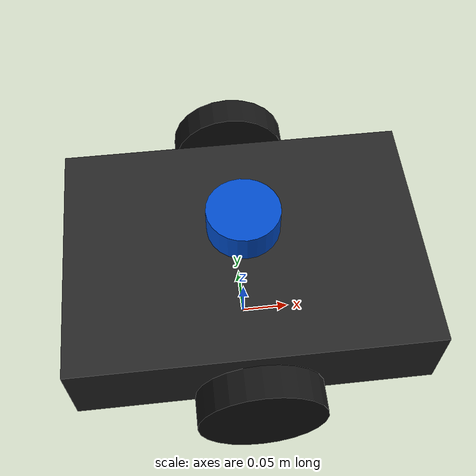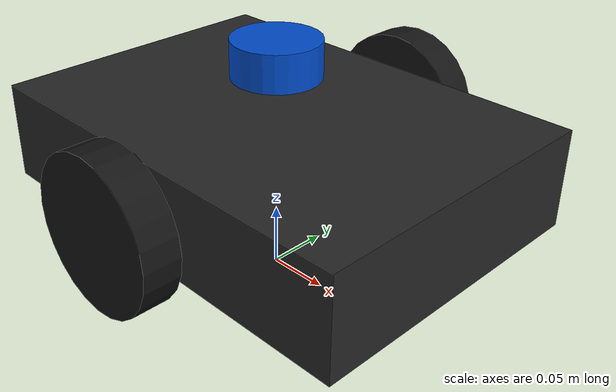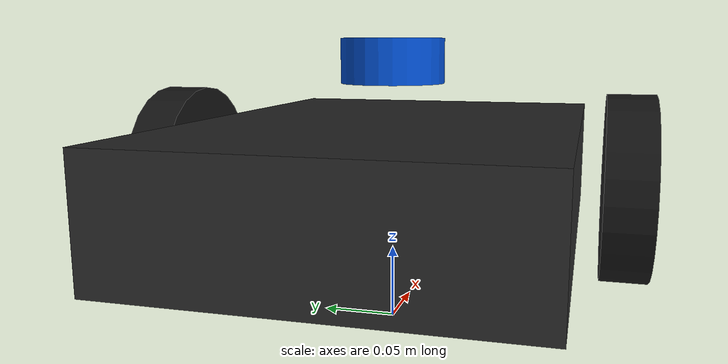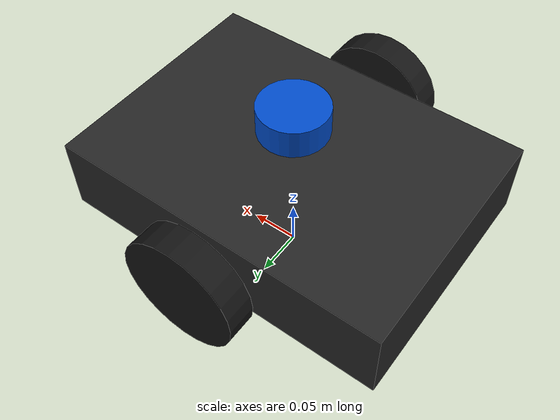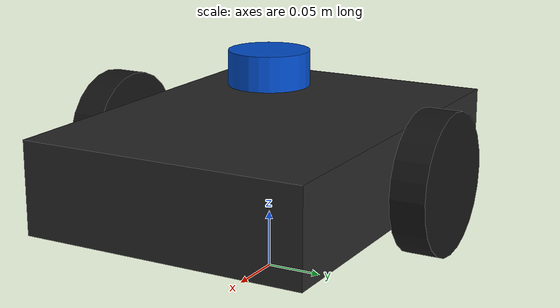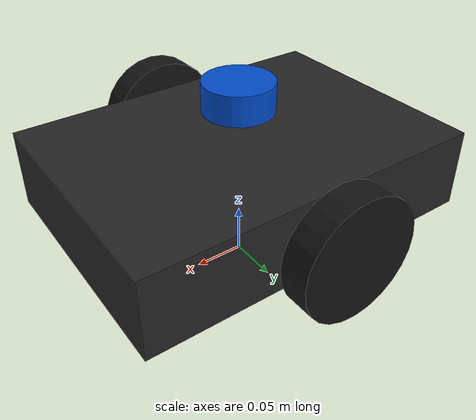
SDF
<?xml version="1.0"?>
<sdf version="1.9">

<model name="my_rover">

  <!-- Chassis center is 0.10 m above the ground -->
  <pose>0 0 0.10 0 0 0</pose>

  <!-- ================= CHASSIS ================= -->

  <link name="base_link">

    <inertial>
      <mass>5.0</mass>
      <inertia>
        <ixx>0.05</ixx>
        <iyy>0.05</iyy>
        <izz>0.05</izz>
      </inertia>
    </inertial>

    <collision name="collision">
      <geometry>
        <box>
          <size>0.35 0.25 0.08</size>
        </box>
      </geometry>
      <surface>
        <contact>
          <ode>
            <kp>10000000.0</kp>
            <kd>1.0</kd>
            <max_vel>0.01</max_vel>
            <min_depth>0.001</min_depth>
          </ode>
        </contact>
      </surface>
    </collision>

    <visual name="visual">
      <geometry>
        <box>
          <size>0.35 0.25 0.08</size>
        </box>
      </geometry>

      <material>
        <ambient>0.15 0.15 0.15 1</ambient>
        <diffuse>0.15 0.15 0.15 1</diffuse>
      </material>
    </visual>

    <!-- ================= CASTER WHEEL ================= -->
    <collision name="caster_collision">
      <pose>-0.12 0 -0.04 0 0 0</pose>
      <geometry>
        <sphere>
          <radius>0.02</radius>
        </sphere>
      </geometry>
      <surface>
        <friction>
          <ode>
            <mu>0.0</mu>
            <mu2>0.0</mu2>
          </ode>
        </friction>
        <contact>
          <ode>
            <kp>10000000.0</kp>
            <kd>1.0</kd>
            <max_vel>0.01</max_vel>
            <min_depth>0.001</min_depth>
          </ode>
        </contact>
      </surface>
    </collision>

    <visual name="caster_visual">
      <pose>-0.12 0 -0.04 0 0 0</pose>
      <geometry>
        <sphere>
          <radius>0.02</radius>
        </sphere>
      </geometry>
      <material>
        <ambient>0.2 0.2 0.2 1</ambient>
        <diffuse>0.2 0.2 0.2 1</diffuse>
      </material>
    </visual>

  </link>

  <!-- ================= LEFT WHEEL ================= -->

  <link name="left_wheel">

    <pose>0 0.155 0 0 0 0</pose>

    <inertial>
      <mass>0.25</mass>
      <inertia>
        <ixx>0.0005</ixx>
        <iyy>0.0005</iyy>
        <izz>0.0005</izz>
      </inertia>
    </inertial>

    <collision name="collision">

      <pose>0 0 0 1.5708 0 0</pose>

      <geometry>
        <cylinder>
          <radius>0.06</radius>
          <length>0.03</length>
        </cylinder>
      </geometry>

      <surface>
        <friction>
          <ode>
            <mu>10.0</mu>
            <mu2>10.0</mu2>
            <frictional_dir>1 0 0</frictional_dir>
          </ode>
        </friction>
        <contact>
          <ode>
            <kp>10000000.0</kp>
            <kd>1.0</kd>
            <max_vel>0.01</max_vel>
            <min_depth>0.001</min_depth>
          </ode>
        </contact>
      </surface>

    </collision>

    <visual name="visual">

      <pose>0 0 0 1.5708 0 0</pose>

      <geometry>
        <cylinder>
          <radius>0.06</radius>
          <length>0.03</length>
        </cylinder>
      </geometry>

      <material>
        <ambient>0.08 0.08 0.08 1</ambient>
        <diffuse>0.08 0.08 0.08 1</diffuse>
      </material>

    </visual>
  </link>

  <!-- ================= RIGHT WHEEL ================= -->

  <link name="right_wheel">

    <pose>0 -0.155 0 0 0 0</pose>

    <inertial>
      <mass>0.25</mass>
      <inertia>
        <ixx>0.0005</ixx>
        <iyy>0.0005</iyy>
        <izz>0.0005</izz>
      </inertia>
    </inertial>

    <collision name="collision">

      <pose>0 0 0 1.5708 0 0</pose>

      <geometry>
        <cylinder>
          <radius>0.06</radius>
          <length>0.03</length>
        </cylinder>
      </geometry>

      <surface>
        <friction>
          <ode>
            <mu>10.0</mu>
            <mu2>10.0</mu2>
            <frictional_dir>1 0 0</frictional_dir>
          </ode>
        </friction>
        <contact>
          <ode>
            <kp>10000000.0</kp>
            <kd>1.0</kd>
            <max_vel>0.01</max_vel>
            <min_depth>0.001</min_depth>
          </ode>
        </contact>
      </surface>

    </collision>

    <visual name="visual">

      <pose>0 0 0 1.5708 0 0</pose>

      <geometry>
        <cylinder>
          <radius>0.06</radius>
          <length>0.03</length>
        </cylinder>
      </geometry>

      <material>
        <ambient>0.08 0.08 0.08 1</ambient>
        <diffuse>0.08 0.08 0.08 1</diffuse>
      </material>

    </visual>

  </link>

  <!-- ================= JOINTS ================= -->

  <joint name="left_wheel_joint" type="revolute">

    <parent>base_link</parent>
    <child>left_wheel</child>

    <pose>0 0 0 0 0 0</pose>

    <axis>
      <xyz>0 1 0</xyz>

      <limit>
        <lower>-1e16</lower>
        <upper>1e16</upper>
      </limit>

      <dynamics>
        <damping>0.01</damping>
      </dynamics>

    </axis>

  </joint>

  <joint name="right_wheel_joint" type="revolute">

    <parent>base_link</parent>
    <child>right_wheel</child>

    <pose>0 0 0 0 0 0</pose>

    <axis>
      <xyz>0 1 0</xyz>

      <limit>
        <lower>-1e16</lower>
        <upper>1e16</upper>
      </limit>

      <dynamics>
        <damping>0.01</damping>
      </dynamics>

    </axis>

  </joint>

  <!-- ================= LIDAR ================= -->

<!-- ================= LIDAR ================= -->

  <link name="lidar_link">
    <!-- Set link pose to zero relative to its joint origin -->
    <pose relative_to="lidar_joint">0 0 0 0 0 0</pose>

    <visual name="visual">
      <geometry>
        <cylinder>
          <radius>0.035</radius>
          <length>0.03</length>
        </cylinder>
      </geometry>
      <material>
        <ambient>0.0 0.3 0.8 1</ambient>
        <diffuse>0.0 0.3 0.8 1</diffuse>
      </material>
    </visual>

    <collision name="collision">
      <geometry>
        <cylinder>
          <radius>0.035</radius>
          <length>0.03</length>
        </cylinder>
      </geometry>
    </collision>

    <inertial>
      <mass>0.1</mass>
      <inertia>
        <ixx>0.0001</ixx>
        <iyy>0.0001</iyy>
        <izz>0.0001</izz>
      </inertia>
    </inertial>

    <sensor name="lidar" type="gpu_lidar">
      <pose>0 0 0 0 0 0</pose>
      <update_rate>10</update_rate>
      <topic>scan</topic>
      <gz_frame_id>lidar_link</gz_frame_id>
      <ray>
        <scan>
          <horizontal>
            <samples>360</samples>
            <resolution>1</resolution>
            <min_angle>-3.14159</min_angle>
            <max_angle>3.14159</max_angle>
          </horizontal>
        </scan>
        <range>
          <min>0.2</min>
          <max>10.0</max>
          <resolution>0.01</resolution>
        </range>
      </ray>
      <always_on>true</always_on>
      <visualize>true</visualize>
    </sensor>
  </link>

  <joint name="lidar_joint" type="fixed">
    <parent>base_link</parent>
    <child>lidar_link</child>
    <!-- Define offset explicitly inside the joint -->
    <pose relative_to="base_link">0 0 0.08 0 0 0</pose>
  </joint>
  <!-- ================= DIFF DRIVE ================= -->

  <plugin
      filename="gz-sim-diff-drive-system"
      name="gz::sim::systems::DiffDrive">

    <left_joint>left_wheel_joint</left_joint>
    <right_joint>right_wheel_joint</right_joint>

    <wheel_separation>0.31</wheel_separation>
    <wheel_radius>0.06</wheel_radius>

    <topic>cmd_vel</topic>

    <odom_topic>odom</odom_topic>
    <tf_topic>tf</tf_topic>

    <frame_id>odom</frame_id>
    <child_frame_id>base_link</child_frame_id>

  </plugin>

    <!-- ================= POSE PUBLISHER ================= -->
</model>

</sdf>
